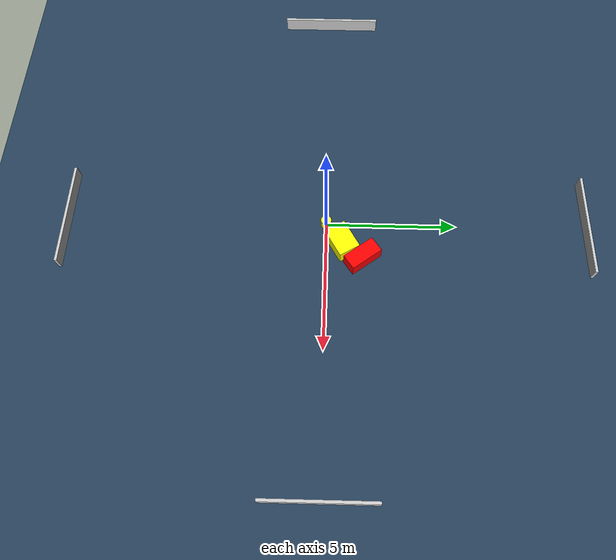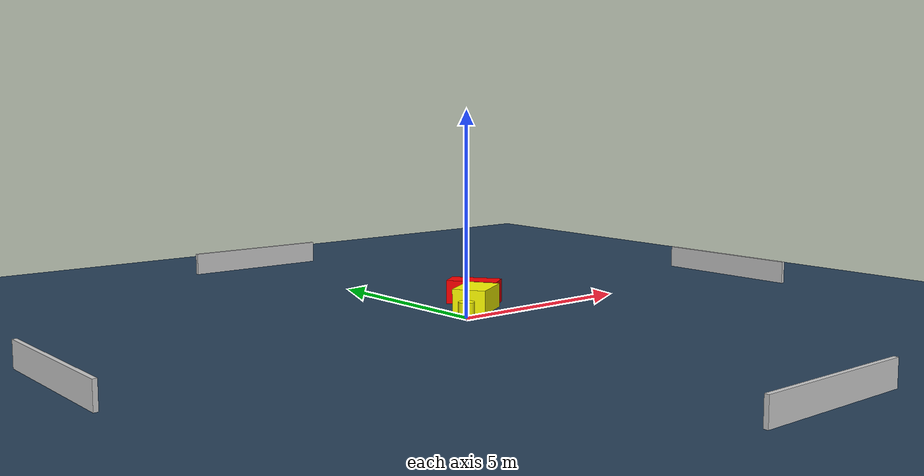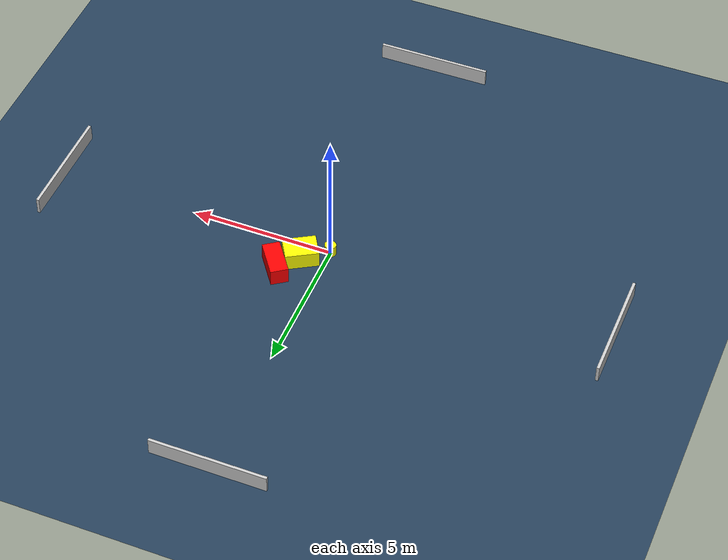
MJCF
<?xml version="1.0" ?>
<mujoco model="generated_environment">
  <option timestep="0.01" integrator="RK4" cone="elliptic"/>
  <default>
    <geom density="1"/>
  </default>
  <asset>
    <texture builtin="gradient" height="3072" name="skybox" rgb1="0.3 0.5 0.7" rgb2="0 0 0" type="skybox" width="512"/>
    <texture builtin="checker" height="300" name="groundplane" rgb1="0.2 0.3 0.4" rgb2="0.1 0.2 0.3" type="2d" width="300"/>
    <material name="groundplane" reflectance="0.2" texrepeat="5 5" texture="groundplane"/>
  </asset>
  <worldbody>
    <light dir="0 0 -1" directional="true" pos="0 0 1.5"/>
    <geom condim="3" friction="0.5 0.005 0.001" material="groundplane" name="floor" pos="0 0 0" size="0 0 0.05" type="plane"/>
    <body name="walls">
      <geom name="wall_1" condim="4" pos="-10.0 0.0 0.3" rgba="0.800000011920929 0.800000011920929 0.800000011920929 1.0" size="0.05 2.0 0.3" type="box"/>
      <geom name="wall_2" condim="4" pos="10.0 0.0 0.3" rgba="0.800000011920929 0.800000011920929 0.800000011920929 1.0" size="0.05 2.0 0.3" type="box"/>
      <geom name="wall_3" condim="4" pos="0.0 -10.0 0.3" rgba="0.800000011920929 0.800000011920929 0.800000011920929 1.0" size="2.0 0.05 0.3" type="box"/>
      <geom name="wall_4" condim="4" pos="0.0 10.0 0.3" rgba="0.800000011920929 0.800000011920929 0.800000011920929 1.0" size="2.0 0.05 0.3" type="box"/>
    </body>
    <body name="robot">
      <joint name="joint_x" type="slide" pos="0 0 0" axis="1 0 0"/>
      <joint name="joint_y" type="slide" pos="0 0 0" axis="0 1 0"/>
      <geom name="robot" type="cylinder" pos="0.0 0.0 0.2" size="0.2 0.2 0.0" mass="5.0" friction="1.0 0.005 0.0001" condim="4" rgba="1.0 1.0 0.0 1.0"/>
    </body>
    <body name="obstacle_1_movable">
      <geom name="obstacle_1_movable" condim="4" pos="0.8346944260379637 0.6208770654524156 0.3" euler="0 0 300.92314934485205" friction="0.0 0.005 0.001" rgba="1.0 1.0 0.0 1.0" size="0.42394165237584847 0.5778821997424904 0.3" type="box" mass="0.1"/>
      <joint type="free"/>
    </body>
    <body name="obstacle_2_static">
      <geom name="obstacle_2_static" condim="4" pos="1.428580521009036 1.3935472821579478 0.3" euler="0 0 216.03856265694253" friction="0.0 0.005 0.001" rgba="1.0 0.0 0.0 1.0" size="0.30650819666886175 0.6549655112537287 0.3" type="box"/>
    </body>
  </worldbody>
  <actuator>
    <motor name="actuator_x" joint="joint_x" gear="1" ctrlrange="-1 1"/>
    <motor name="actuator_y" joint="joint_y" gear="1" ctrlrange="-1 1"/>
  </actuator>
</mujoco>
